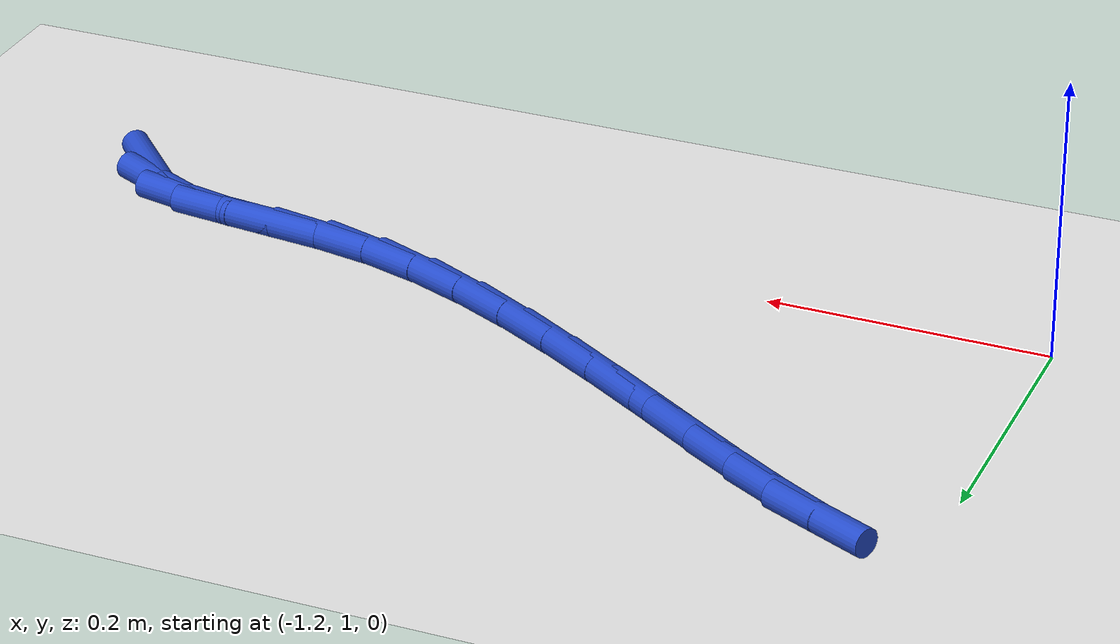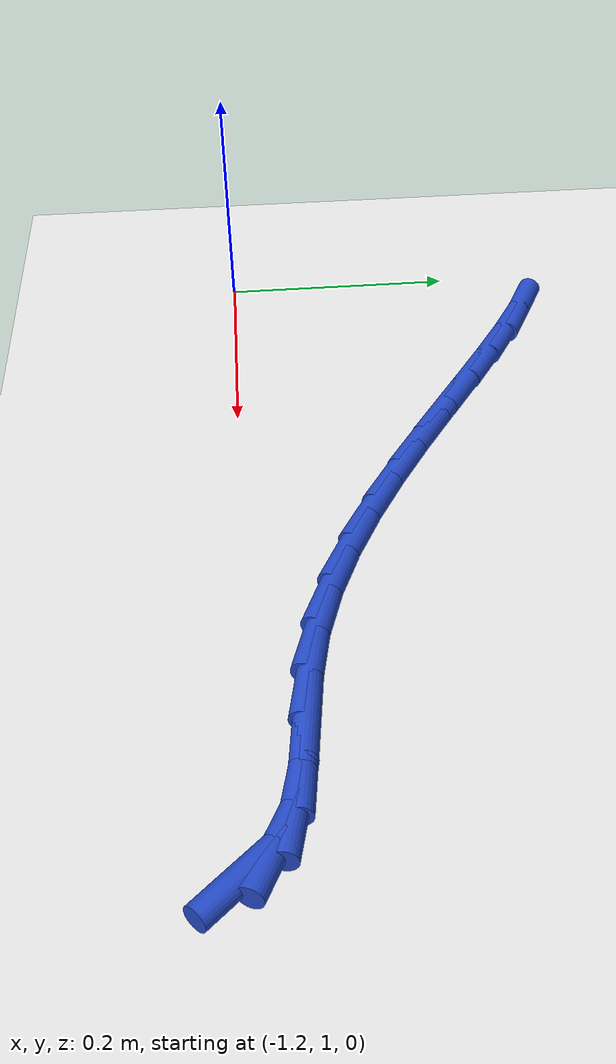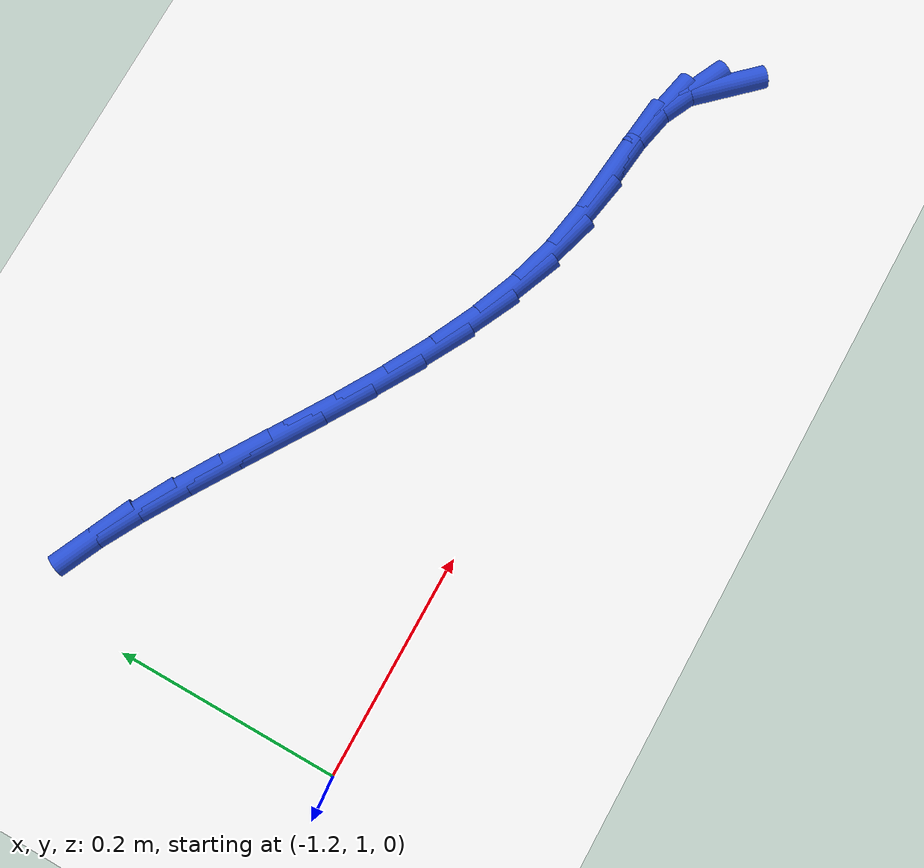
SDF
<sdf version="1.6">
 <world name="default">
  <model name="ground_plane">
   <static>1</static>
   <link name="link">
    <collision name="collision">
     <geometry><plane><normal>0 0 1</normal><size>100 100</size></plane></geometry>
     <surface><friction><ode><mu>100</mu><mu2>50</mu2></ode></friction></surface>
    </collision>
    <visual name="visual">
     <cast_shadows>0</cast_shadows>
     <geometry><plane><normal>0 0 1</normal><size>100 100</size></plane></geometry>
     <material>
      <script><uri>file://media/materials/scripts/gazebo.material</uri><name>Gazebo/WhiteGlow</name></script>
     </material>
    </visual>
   </link>
  </model>
  <model name="line">
   <link name="link_32">
    <pose>-0.5291921902177145 0.9960682396986354 0.01 0 1.57 -0.8118911979268411</pose>
    <collision name="collision">
     <geometry><cylinder><radius>0.01</radius><length>0.08</length></cylinder></geometry>
    </collision>
    <visual name="visual">
     <material>
      <script><name>Gazebo/Blue</name><uri>file://media/materials/scripts/gazebo.material</uri></script>
     </material>
     <geometry><cylinder><radius>0.01</radius><length>0.08</length></cylinder></geometry>
    </visual>
   </link>
   <link name="link_33">
    <pose>-0.5495478442204685 1.0175320782448027 0.01 0 1.57 -0.44181427309850313</pose>
    <collision name="collision">
     <geometry><cylinder><radius>0.01</radius><length>0.08</length></cylinder></geometry>
    </collision>
    <visual name="visual">
     <material>
      <script><name>Gazebo/Blue</name><uri>file://media/materials/scripts/gazebo.material</uri></script>
     </material>
     <geometry><cylinder><radius>0.01</radius><length>0.08</length></cylinder></geometry>
    </visual>
   </link>
   <link name="link_34">
    <pose>-0.5768705189167372 1.0304556706613401 0.01 0 1.57 -0.2072579754254557</pose>
    <collision name="collision">
     <geometry><cylinder><radius>0.01</radius><length>0.08</length></cylinder></geometry>
    </collision>
    <visual name="visual">
     <material>
      <script><name>Gazebo/Blue</name><uri>file://media/materials/scripts/gazebo.material</uri></script>
     </material>
     <geometry><cylinder><radius>0.01</radius><length>0.08</length></cylinder></geometry>
    </visual>
   </link>
   <link name="link_35">
    <pose>-0.6100336075477354 1.0374291226163637 0.01 0 1.57 -0.10825156294374857</pose>
    <collision name="collision">
     <geometry><cylinder><radius>0.01</radius><length>0.08</length></cylinder></geometry>
    </collision>
    <visual name="visual">
     <material>
      <script><name>Gazebo/Blue</name><uri>file://media/materials/scripts/gazebo.material</uri></script>
     </material>
     <geometry><cylinder><radius>0.01</radius><length>0.08</length></cylinder></geometry>
    </visual>
   </link>
   <link name="link_36">
    <pose>-0.6476064105717211 1.0415123995676463 0.01 0 1.57 -0.1044977878045931</pose>
    <collision name="collision">
     <geometry><cylinder><radius>0.01</radius><length>0.08</length></cylinder></geometry>
    </collision>
    <visual name="visual">
     <material>
      <script><name>Gazebo/Blue</name><uri>file://media/materials/scripts/gazebo.material</uri></script>
     </material>
     <geometry><cylinder><radius>0.01</radius><length>0.08</length></cylinder></geometry>
    </visual>
   </link>
   <link name="link_37">
    <pose>-0.6881582284469525 1.0457654669729637 0.01 0 1.57 -0.17570593819324148</pose>
    <collision name="collision">
     <geometry><cylinder><radius>0.01</radius><length>0.08</length></cylinder></geometry>
    </collision>
    <visual name="visual">
     <material>
      <script><name>Gazebo/Blue</name><uri>file://media/materials/scripts/gazebo.material</uri></script>
     </material>
     <geometry><cylinder><radius>0.01</radius><length>0.08</length></cylinder></geometry>
    </visual>
   </link>
   <link name="link_38">
    <pose>-0.7302607166569515 1.053240204417094 0.01 0 1.57 -0.2864546156416662</pose>
    <collision name="collision">
     <geometry><cylinder><radius>0.01</radius><length>0.08</length></cylinder></geometry>
    </collision>
    <visual name="visual">
     <material>
      <script><name>Gazebo/Blue</name><uri>file://media/materials/scripts/gazebo.material</uri></script>
     </material>
     <geometry><cylinder><radius>0.01</radius><length>0.08</length></cylinder></geometry>
    </visual>
   </link>
   <link name="link_39">
    <pose>-0.7728371190922563 1.0657813285514586 0.01 0 1.57 -0.3783870833584046</pose>
    <collision name="collision">
     <geometry><cylinder><radius>0.01</radius><length>0.08</length></cylinder></geometry>
    </collision>
    <visual name="visual">
     <material>
      <script><name>Gazebo/Blue</name><uri>file://media/materials/scripts/gazebo.material</uri></script>
     </material>
     <geometry><cylinder><radius>0.01</radius><length>0.08</length></cylinder></geometry>
    </visual>
   </link>
   <link name="link_40">
    <pose>-0.8155326592903765 1.0827546714821707 0.01 0 1.57 -0.44835178662146985</pose>
    <collision name="collision">
     <geometry><cylinder><radius>0.01</radius><length>0.08</length></cylinder></geometry>
    </collision>
    <visual name="visual">
     <material>
      <script><name>Gazebo/Blue</name><uri>file://media/materials/scripts/gazebo.material</uri></script>
     </material>
     <geometry><cylinder><radius>0.01</radius><length>0.08</length></cylinder></geometry>
    </visual>
   </link>
   <link name="link_41">
    <pose>-0.8580812488932248 1.1032215587100955 0.01 0 1.57 -0.5000548467181876</pose>
    <collision name="collision">
     <geometry><cylinder><radius>0.01</radius><length>0.08</length></cylinder></geometry>
    </collision>
    <visual name="visual">
     <material>
      <script><name>Gazebo/Blue</name><uri>file://media/materials/scripts/gazebo.material</uri></script>
     </material>
     <geometry><cylinder><radius>0.01</radius><length>0.08</length></cylinder></geometry>
    </visual>
   </link>
   <link name="link_42">
    <pose>-0.9002167995427136 1.1262433157360994 0.01 0 1.57 -0.5362249115061972</pose>
    <collision name="collision">
     <geometry><cylinder><radius>0.01</radius><length>0.08</length></cylinder></geometry>
    </collision>
    <visual name="visual">
     <material>
      <script><name>Gazebo/Blue</name><uri>file://media/materials/scripts/gazebo.material</uri></script>
     </material>
     <geometry><cylinder><radius>0.01</radius><length>0.08</length></cylinder></geometry>
    </visual>
   </link>
   <link name="link_43">
    <pose>-0.9416732228807557 1.1508812680610478 0.01 0 1.57 -0.5585277473288536</pose>
    <collision name="collision">
     <geometry><cylinder><radius>0.01</radius><length>0.08</length></cylinder></geometry>
    </collision>
    <visual name="visual">
     <material>
      <script><name>Gazebo/Blue</name><uri>file://media/materials/scripts/gazebo.material</uri></script>
     </material>
     <geometry><cylinder><radius>0.01</radius><length>0.08</length></cylinder></geometry>
    </visual>
   </link>
   <link name="link_44">
    <pose>-0.9821844305492633 1.1761967411858063 0.01 0 1.57 -0.5675490384119425</pose>
    <collision name="collision">
     <geometry><cylinder><radius>0.01</radius><length>0.08</length></cylinder></geometry>
    </collision>
    <visual name="visual">
     <material>
      <script><name>Gazebo/Blue</name><uri>file://media/materials/scripts/gazebo.material</uri></script>
     </material>
     <geometry><cylinder><radius>0.01</radius><length>0.08</length></cylinder></geometry>
    </visual>
   </link>
   <link name="link_45">
    <pose>-1.0214843341901496 1.2012510606112419 0.01 0 1.57 -0.5626845436262138</pose>
    <collision name="collision">
     <geometry><cylinder><radius>0.01</radius><length>0.08</length></cylinder></geometry>
    </collision>
    <visual name="visual">
     <material>
      <script><name>Gazebo/Blue</name><uri>file://media/materials/scripts/gazebo.material</uri></script>
     </material>
     <geometry><cylinder><radius>0.01</radius><length>0.08</length></cylinder></geometry>
    </visual>
   </link>
   <link name="link_46">
    <pose>-1.0593068454453263 1.2251055518382195 0.01 0 1.57 -0.5418157963368851</pose>
    <collision name="collision">
     <geometry><cylinder><radius>0.01</radius><length>0.08</length></cylinder></geometry>
    </collision>
    <visual name="visual">
     <material>
      <script><name>Gazebo/Blue</name><uri>file://media/materials/scripts/gazebo.material</uri></script>
     </material>
     <geometry><cylinder><radius>0.01</radius><length>0.08</length></cylinder></geometry>
    </visual>
   </link>
   <link name="link_47">
    <pose>-1.0953858759567063 1.2468215403676046 0.01 0 1.57 -0.5006006462898879</pose>
    <collision name="collision">
     <geometry><cylinder><radius>0.01</radius><length>0.08</length></cylinder></geometry>
    </collision>
    <visual name="visual">
     <material>
      <script><name>Gazebo/Blue</name><uri>file://media/materials/scripts/gazebo.material</uri></script>
     </material>
     <geometry><cylinder><radius>0.01</radius><length>0.08</length></cylinder></geometry>
    </visual>
   </link>
   <link name="link_48">
    <pose>-1.1294553373662017 1.2654603517002636 0.01 0 1.57 -0.4310818830031879</pose>
    <collision name="collision">
     <geometry><cylinder><radius>0.01</radius><length>0.08</length></cylinder></geometry>
    </collision>
    <visual name="visual">
     <material>
      <script><name>Gazebo/Blue</name><uri>file://media/materials/scripts/gazebo.material</uri></script>
     </material>
     <geometry><cylinder><radius>0.01</radius><length>0.08</length></cylinder></geometry>
    </visual>
   </link>
  </model>
 </world>
</sdf>
